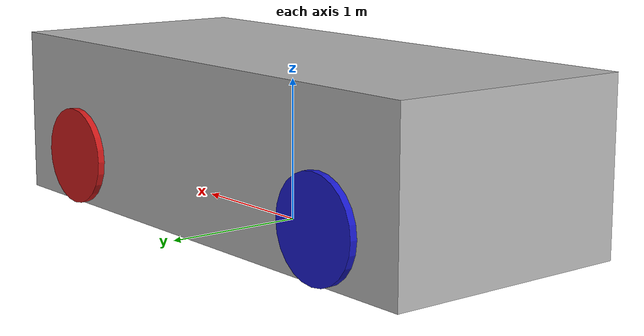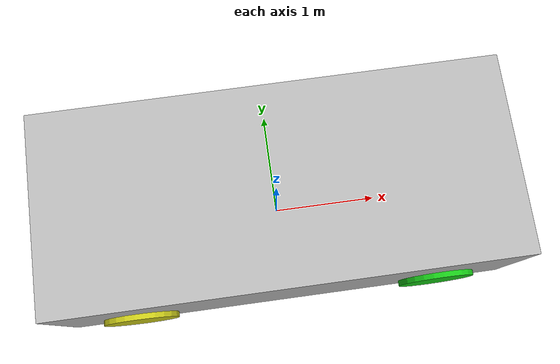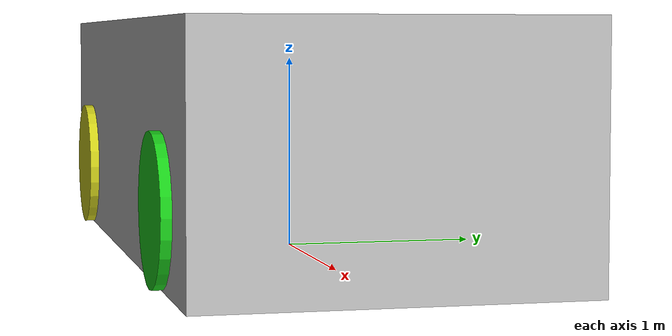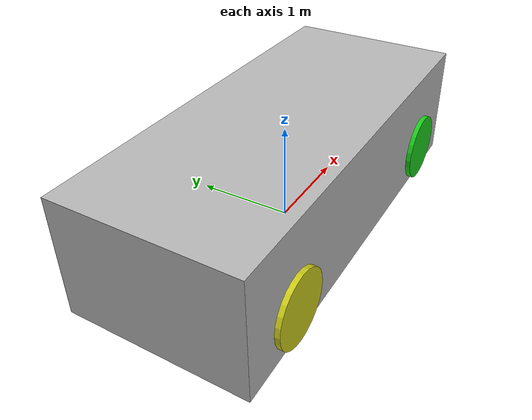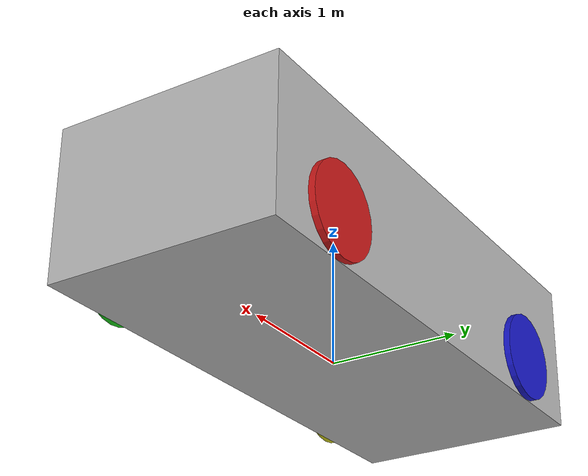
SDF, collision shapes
<?xml version="1.0"?>
<sdf version="1.6">
  <model name="suv_vehicle">
    <pose>0 0 0 0 0 0</pose>
    <static>false</static>

    <link name="chassis">
      <pose>0 0 0 0 0 0</pose>
      <inertial>
        <mass>1500</mass>
        <inertia>
          <ixx>450</ixx>
          <iyy>2100</iyy>
          <izz>2300</izz>
          <ixy>0</ixy>
          <ixz>0</ixz>
          <iyz>0</iyz>
        </inertia>
      </inertial>
      <collision name="chassis_collision">
        <pose>0 0 0.6 0 0 0</pose>
        <geometry>
          <box>
            <size>4.2 1.8 1.2</size>
          </box>
        </geometry>
      </collision>
      <visual name="chassis_visual">
        <pose>0 0 0 0 0 -1.57079632679</pose>
        <geometry>
          <mesh>
            <uri>meshes/suv.obj</uri>
            <scale>0.06 0.06 0.06</scale>
          </mesh>
        </geometry>
      </visual>
    </link>

    <link name="front_left_steering_link">
      <pose>1.4 0.85 0.35 0 0 0</pose>
      <inertial>
        <mass>10</mass>
        <inertia>
          <ixx>0.2</ixx>
          <iyy>0.2</iyy>
          <izz>0.2</izz>
          <ixy>0</ixy>
          <ixz>0</ixz>
          <iyz>0</iyz>
        </inertia>
      </inertial>
    </link>

    <link name="front_right_steering_link">
      <pose>1.4 -0.85 0.35 0 0 0</pose>
      <inertial>
        <mass>10</mass>
        <inertia>
          <ixx>0.2</ixx>
          <iyy>0.2</iyy>
          <izz>0.2</izz>
          <ixy>0</ixy>
          <ixz>0</ixz>
          <iyz>0</iyz>
        </inertia>
      </inertial>
    </link>

    <link name="front_left_wheel">
      <pose>1.4 0.85 0.35 0 0 0</pose>
      <inertial>
        <mass>20</mass>
        <inertia>
          <ixx>0.6</ixx>
          <iyy>0.6</iyy>
          <izz>0.6</izz>
          <ixy>0</ixy>
          <ixz>0</ixz>
          <iyz>0</iyz>
        </inertia>
      </inertial>
      <collision name="front_left_wheel_collision">
        <pose>0 0 0 1.5708 0 0</pose>
        <geometry>
          <cylinder>
            <radius>0.35</radius>
            <length>0.2</length>
          </cylinder>
        </geometry>
      </collision>

          <visual name="front_left_wheel_spin_marker">
        <pose>0.35 0 0 0 0 0</pose>
        <geometry>
          <box>
            <size>0.2 0.08 0.08</size>
          </box>
        </geometry>
        <material>
          <ambient>0.8 0.1 0.1 1</ambient>
          <diffuse>0.8 0.1 0.1 1</diffuse>
        </material>
      </visual>
</link>

    <link name="front_right_wheel">
      <pose>1.4 -0.85 0.35 0 0 0</pose>
      <inertial>
        <mass>20</mass>
        <inertia>
          <ixx>0.6</ixx>
          <iyy>0.6</iyy>
          <izz>0.6</izz>
          <ixy>0</ixy>
          <ixz>0</ixz>
          <iyz>0</iyz>
        </inertia>
      </inertial>
      <collision name="front_right_wheel_collision">
        <pose>0 0 0 1.5708 0 0</pose>
        <geometry>
          <cylinder>
            <radius>0.35</radius>
            <length>0.2</length>
          </cylinder>
        </geometry>
      </collision>

          <visual name="front_right_wheel_spin_marker">
        <pose>0.35 0 0 0 0 0</pose>
        <geometry>
          <box>
            <size>0.2 0.08 0.08</size>
          </box>
        </geometry>
        <material>
          <ambient>0.1 0.8 0.1 1</ambient>
          <diffuse>0.1 0.8 0.1 1</diffuse>
        </material>
      </visual>
</link>

    <link name="rear_left_wheel">
      <pose>-1.4 0.85 0.35 0 0 0</pose>
      <inertial>
        <mass>20</mass>
        <inertia>
          <ixx>0.6</ixx>
          <iyy>0.6</iyy>
          <izz>0.6</izz>
          <ixy>0</ixy>
          <ixz>0</ixz>
          <iyz>0</iyz>
        </inertia>
      </inertial>
      <collision name="rear_left_wheel_collision">
        <pose>0 0 0 1.5708 0 0</pose>
        <geometry>
          <cylinder>
            <radius>0.35</radius>
            <length>0.2</length>
          </cylinder>
        </geometry>
      </collision>

          <visual name="rear_left_wheel_spin_marker">
        <pose>0.35 0 0 0 0 0</pose>
        <geometry>
          <box>
            <size>0.2 0.08 0.08</size>
          </box>
        </geometry>
        <material>
          <ambient>0.1 0.1 0.8 1</ambient>
          <diffuse>0.1 0.1 0.8 1</diffuse>
        </material>
      </visual>
</link>

    <link name="rear_right_wheel">
      <pose>-1.4 -0.85 0.35 0 0 0</pose>
      <inertial>
        <mass>20</mass>
        <inertia>
          <ixx>0.6</ixx>
          <iyy>0.6</iyy>
          <izz>0.6</izz>
          <ixy>0</ixy>
          <ixz>0</ixz>
          <iyz>0</iyz>
        </inertia>
      </inertial>
      <collision name="rear_right_wheel_collision">
        <pose>0 0 0 1.5708 0 0</pose>
        <geometry>
          <cylinder>
            <radius>0.35</radius>
            <length>0.2</length>
          </cylinder>
        </geometry>
      </collision>

          <visual name="rear_right_wheel_spin_marker">
        <pose>0.35 0 0 0 0 0</pose>
        <geometry>
          <box>
            <size>0.2 0.08 0.08</size>
          </box>
        </geometry>
        <material>
          <ambient>0.8 0.8 0.1 1</ambient>
          <diffuse>0.8 0.8 0.1 1</diffuse>
        </material>
      </visual>
</link>

    <joint name="front_left_wheel_steering_joint" type="revolute">
      <parent>chassis</parent>
      <child>front_left_steering_link</child>
      <axis>
        <xyz>0 0 1</xyz>
        <limit>
          <lower>-0.6</lower>
          <upper>0.6</upper>
          <velocity>1.0</velocity>
          <effort>50</effort>
        </limit>
      </axis>
    </joint>

    <joint name="front_right_wheel_steering_joint" type="revolute">
      <parent>chassis</parent>
      <child>front_right_steering_link</child>
      <axis>
        <xyz>0 0 1</xyz>
        <limit>
          <lower>-0.6</lower>
          <upper>0.6</upper>
          <velocity>1.0</velocity>
          <effort>50</effort>
        </limit>
      </axis>
    </joint>

    <joint name="front_left_wheel_joint" type="revolute">
      <parent>front_left_steering_link</parent>
      <child>front_left_wheel</child>
      <axis>
        <xyz>0 1 0</xyz>
      </axis>
    </joint>

    <joint name="front_right_wheel_joint" type="revolute">
      <parent>front_right_steering_link</parent>
      <child>front_right_wheel</child>
      <axis>
        <xyz>0 1 0</xyz>
      </axis>
    </joint>

    <joint name="rear_left_wheel_joint" type="revolute">
      <parent>chassis</parent>
      <child>rear_left_wheel</child>
      <axis>
        <xyz>0 1 0</xyz>
      </axis>
    </joint>

    <joint name="rear_right_wheel_joint" type="revolute">
      <parent>chassis</parent>
      <child>rear_right_wheel</child>
      <axis>
        <xyz>0 1 0</xyz>
      </axis>
    </joint>

    <plugin
      filename="gz-sim-joint-state-publisher-system"
      name="gz::sim::systems::JointStatePublisher"></plugin>

        <plugin
      filename="gz-sim-joint-position-controller-system"
      name="gz::sim::systems::JointPositionController">
      <joint_name>front_left_wheel_steering_joint</joint_name>
      <topic>steer_left_cmd</topic>
      <p_gain>5</p_gain>
      <i_gain>0.2</i_gain>
      <d_gain>0.05</d_gain>
      <i_max>0.5</i_max>
      <i_min>-0.5</i_min>
      <cmd_max>5</cmd_max>
      <cmd_min>-5</cmd_min>
    </plugin>

    <plugin
      filename="gz-sim-joint-position-controller-system"
      name="gz::sim::systems::JointPositionController">
      <joint_name>front_right_wheel_steering_joint</joint_name>
      <topic>steer_right_cmd</topic>
      <p_gain>5</p_gain>
      <i_gain>0.2</i_gain>
      <d_gain>0.05</d_gain>
      <i_max>0.5</i_max>
      <i_min>-0.5</i_min>
      <cmd_max>5</cmd_max>
      <cmd_min>-5</cmd_min>
    </plugin>

    <plugin
      filename="gz-sim-odometry-publisher-system"
      name="gz::sim::systems::OdometryPublisher">
      <odom_frame>odom</odom_frame>
      <robot_base_frame>base_link</robot_base_frame>
      <odom_topic>/model/suv_vehicle/odometry</odom_topic>
      <link_name>chassis</link_name>
      <publish_frequency>50</publish_frequency>
    </plugin>

<plugin
      filename="gz-sim-apply-joint-force-system"
      name="gz::sim::systems::ApplyJointForce">
      <joint_name>front_left_wheel_joint</joint_name>
    </plugin>

    <plugin
      filename="gz-sim-apply-joint-force-system"
      name="gz::sim::systems::ApplyJointForce">
      <joint_name>front_right_wheel_joint</joint_name>
    </plugin>

    <plugin
      filename="gz-sim-apply-joint-force-system"
      name="gz::sim::systems::ApplyJointForce">
      <joint_name>rear_left_wheel_joint</joint_name>
    </plugin>

    <plugin
      filename="gz-sim-apply-joint-force-system"
      name="gz::sim::systems::ApplyJointForce">
      <joint_name>rear_right_wheel_joint</joint_name>
    </plugin>

    <plugin
      filename="gz-sim-python-system-loader-system"
      name="gz::sim::systems::PythonSystemLoader">
      <module_name>truck_gz_driver</module_name>
    </plugin>
  </model>
</sdf>
